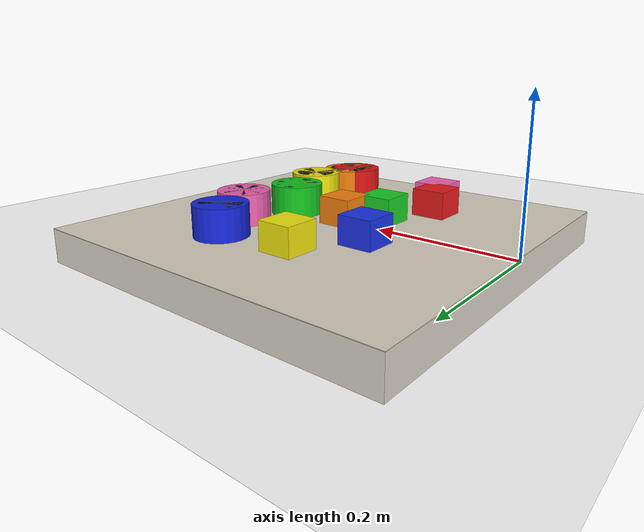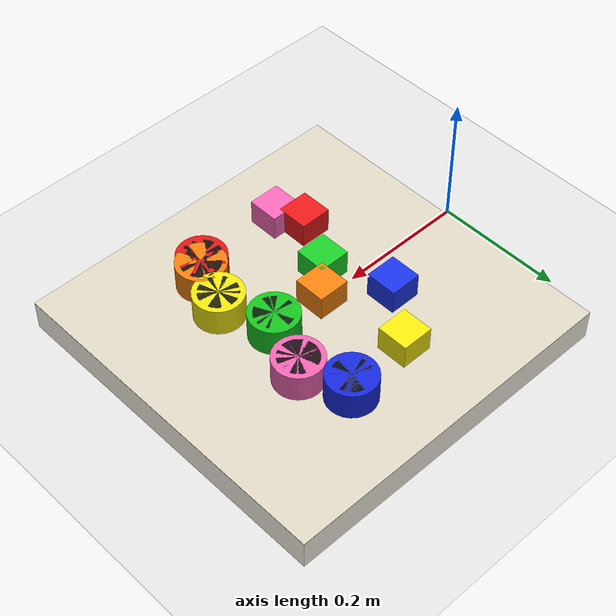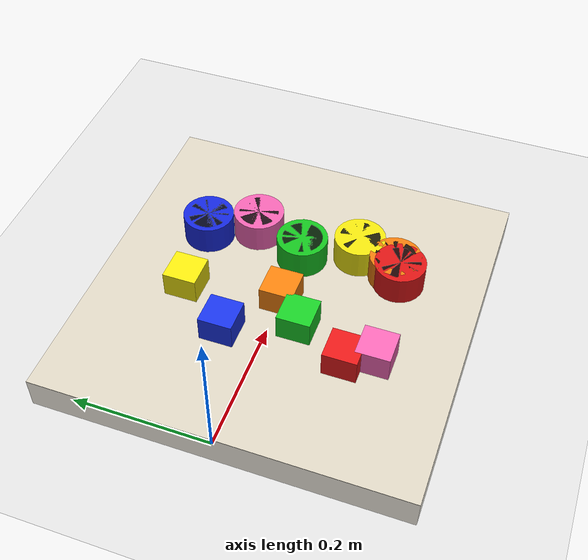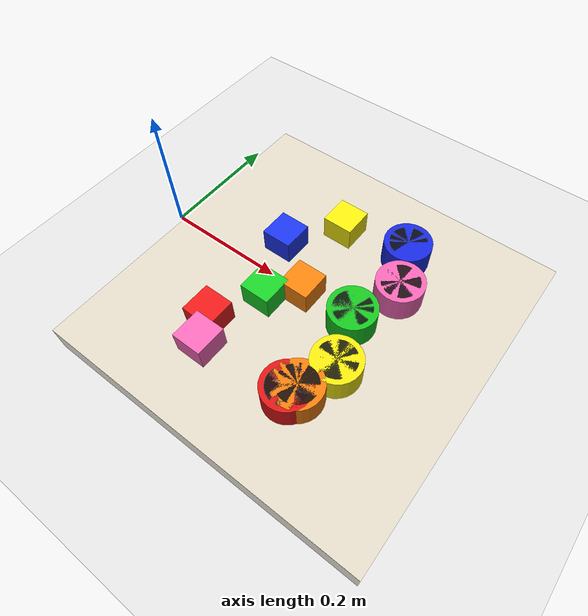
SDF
<?xml version="1.0" ?>
<sdf version="1.6">
<world name="default">
  <include><uri>model://sun</uri></include>
  <include><uri>model://ground_plane</uri></include>

  <!-- 工作台 -->
  <model name="workspace_table">
    <static>true</static>
    <pose>0.28 0.0 -0.025 0 0 0</pose>
    <link name="link">
      <visual name="v"><geometry><box><size>0.55 0.55 0.05</size></box></geometry>
        <material><ambient>0.85 0.82 0.75 1</ambient><diffuse>0.85 0.82 0.75 1</diffuse></material>
      </visual>
      <collision name="c"><geometry><box><size>0.55 0.55 0.05</size></box></geometry></collision>
    </link>
  </model>

  <!-- ══════════════ 方块 (5cm × 5cm × 4cm) ══════════════ -->

  <model name="red_block">
    <pose>0.18 -0.12 0.02 0 0 0</pose>
    <link name="link">
      <inertial><mass>0.05</mass></inertial>
      <visual name="v"><geometry><box><size>0.05 0.05 0.04</size></box></geometry>
        <material><ambient>0.9 0.1 0.1 1</ambient><diffuse>0.9 0.1 0.1 1</diffuse></material>
      </visual>
      <collision name="c"><geometry><box><size>0.05 0.05 0.04</size></box></geometry>
        <surface><friction><ode><mu>0.8</mu><mu2>0.8</mu2></ode></friction></surface>
      </collision>
    </link>
  </model>

  <model name="green_block">
    <pose>0.22 -0.04 0.02 0 0 0</pose>
    <link name="link">
      <inertial><mass>0.05</mass></inertial>
      <visual name="v"><geometry><box><size>0.05 0.05 0.04</size></box></geometry>
        <material><ambient>0.1 0.8 0.15 1</ambient><diffuse>0.1 0.8 0.15 1</diffuse></material>
      </visual>
      <collision name="c"><geometry><box><size>0.05 0.05 0.04</size></box></geometry>
        <surface><friction><ode><mu>0.8</mu><mu2>0.8</mu2></ode></friction></surface>
      </collision>
    </link>
  </model>

  <model name="blue_block">
    <pose>0.18 0.06 0.02 0 0 0</pose>
    <link name="link">
      <inertial><mass>0.05</mass></inertial>
      <visual name="v"><geometry><box><size>0.05 0.05 0.04</size></box></geometry>
        <material><ambient>0.1 0.2 0.9 1</ambient><diffuse>0.1 0.2 0.9 1</diffuse></material>
      </visual>
      <collision name="c"><geometry><box><size>0.05 0.05 0.04</size></box></geometry>
        <surface><friction><ode><mu>0.8</mu><mu2>0.8</mu2></ode></friction></surface>
      </collision>
    </link>
  </model>

  <model name="yellow_block">
    <pose>0.24 0.14 0.02 0 0 0</pose>
    <link name="link">
      <inertial><mass>0.05</mass></inertial>
      <visual name="v"><geometry><box><size>0.05 0.05 0.04</size></box></geometry>
        <material><ambient>0.95 0.9 0.05 1</ambient><diffuse>0.95 0.9 0.05 1</diffuse></material>
      </visual>
      <collision name="c"><geometry><box><size>0.05 0.05 0.04</size></box></geometry>
        <surface><friction><ode><mu>0.8</mu><mu2>0.8</mu2></ode></friction></surface>
      </collision>
    </link>
  </model>

  <model name="pink_block">
    <pose>0.20 -0.16 0.02 0 0 0</pose>
    <link name="link">
      <inertial><mass>0.05</mass></inertial>
      <visual name="v"><geometry><box><size>0.05 0.05 0.04</size></box></geometry>
        <material><ambient>0.95 0.4 0.7 1</ambient><diffuse>0.95 0.4 0.7 1</diffuse></material>
      </visual>
      <collision name="c"><geometry><box><size>0.05 0.05 0.04</size></box></geometry>
        <surface><friction><ode><mu>0.8</mu><mu2>0.8</mu2></ode></friction></surface>
      </collision>
    </link>
  </model>

  <model name="orange_block">
    <pose>0.26 0.0 0.02 0 0 0</pose>
    <link name="link">
      <inertial><mass>0.05</mass></inertial>
      <visual name="v"><geometry><box><size>0.05 0.05 0.04</size></box></geometry>
        <material><ambient>0.95 0.5 0.05 1</ambient><diffuse>0.95 0.5 0.05 1</diffuse></material>
      </visual>
      <collision name="c"><geometry><box><size>0.05 0.05 0.04</size></box></geometry>
        <surface><friction><ode><mu>0.8</mu><mu2>0.8</mu2></ode></friction></surface>
      </collision>
    </link>
  </model>

  <!-- ══════════════ 垃圾桶 (圆柱体, r=3.8cm, h=9cm) ══════════════
       桶是STATIC：因为它们是目标，不需要被物理引擎移动。
       训练时通过set_model_state传送到随机位置（static物体也可以被传送）。
  ══════════════ -->

  <model name="red_bin">
    <static>true</static>
    <pose>0.35 -0.15 0.0 0 0 0</pose>
    <link name="bin_outer">
      <visual name="v"><geometry><cylinder><radius>0.038</radius><length>0.090</length></cylinder></geometry>
        <material><ambient>0.85 0.08 0.08 1</ambient><diffuse>0.85 0.08 0.08 1</diffuse><specular>0.3 0.3 0.3 1</specular></material>
      </visual>
      <collision name="c"><geometry><cylinder><radius>0.038</radius><length>0.090</length></cylinder></geometry></collision>
    </link>
    <link name="bin_inner"><pose>0 0 0.005 0 0 0</pose>
      <visual name="v"><geometry><cylinder><radius>0.030</radius><length>0.080</length></cylinder></geometry>
        <material><ambient>0.12 0.02 0.02 1</ambient><diffuse>0.12 0.02 0.02 1</diffuse></material>
      </visual>
    </link>
  </model>

  <model name="green_bin">
    <static>true</static>
    <pose>0.35 0.00 0.0 0 0 0</pose>
    <link name="bin_outer">
      <visual name="v"><geometry><cylinder><radius>0.038</radius><length>0.090</length></cylinder></geometry>
        <material><ambient>0.08 0.75 0.12 1</ambient><diffuse>0.08 0.75 0.12 1</diffuse><specular>0.3 0.3 0.3 1</specular></material>
      </visual>
      <collision name="c"><geometry><cylinder><radius>0.038</radius><length>0.090</length></cylinder></geometry></collision>
    </link>
    <link name="bin_inner"><pose>0 0 0.005 0 0 0</pose>
      <visual name="v"><geometry><cylinder><radius>0.030</radius><length>0.080</length></cylinder></geometry>
        <material><ambient>0.02 0.12 0.02 1</ambient><diffuse>0.02 0.12 0.02 1</diffuse></material>
      </visual>
    </link>
  </model>

  <model name="blue_bin">
    <static>true</static>
    <pose>0.35 0.15 0.0 0 0 0</pose>
    <link name="bin_outer">
      <visual name="v"><geometry><cylinder><radius>0.038</radius><length>0.090</length></cylinder></geometry>
        <material><ambient>0.08 0.15 0.85 1</ambient><diffuse>0.08 0.15 0.85 1</diffuse><specular>0.3 0.3 0.3 1</specular></material>
      </visual>
      <collision name="c"><geometry><cylinder><radius>0.038</radius><length>0.090</length></cylinder></geometry></collision>
    </link>
    <link name="bin_inner"><pose>0 0 0.005 0 0 0</pose>
      <visual name="v"><geometry><cylinder><radius>0.030</radius><length>0.080</length></cylinder></geometry>
        <material><ambient>0.02 0.03 0.12 1</ambient><diffuse>0.02 0.03 0.12 1</diffuse></material>
      </visual>
    </link>
  </model>

  <model name="yellow_bin">
    <static>true</static>
    <pose>0.38 -0.08 0.0 0 0 0</pose>
    <link name="bin_outer">
      <visual name="v"><geometry><cylinder><radius>0.038</radius><length>0.090</length></cylinder></geometry>
        <material><ambient>0.92 0.88 0.05 1</ambient><diffuse>0.92 0.88 0.05 1</diffuse><specular>0.3 0.3 0.3 1</specular></material>
      </visual>
      <collision name="c"><geometry><cylinder><radius>0.038</radius><length>0.090</length></cylinder></geometry></collision>
    </link>
    <link name="bin_inner"><pose>0 0 0.005 0 0 0</pose>
      <visual name="v"><geometry><cylinder><radius>0.030</radius><length>0.080</length></cylinder></geometry>
        <material><ambient>0.12 0.12 0.02 1</ambient><diffuse>0.12 0.12 0.02 1</diffuse></material>
      </visual>
    </link>
  </model>

  <model name="pink_bin">
    <static>true</static>
    <pose>0.38 0.08 0.0 0 0 0</pose>
    <link name="bin_outer">
      <visual name="v"><geometry><cylinder><radius>0.038</radius><length>0.090</length></cylinder></geometry>
        <material><ambient>0.92 0.38 0.68 1</ambient><diffuse>0.92 0.38 0.68 1</diffuse><specular>0.3 0.3 0.3 1</specular></material>
      </visual>
      <collision name="c"><geometry><cylinder><radius>0.038</radius><length>0.090</length></cylinder></geometry></collision>
    </link>
    <link name="bin_inner"><pose>0 0 0.005 0 0 0</pose>
      <visual name="v"><geometry><cylinder><radius>0.030</radius><length>0.080</length></cylinder></geometry>
        <material><ambient>0.12 0.05 0.08 1</ambient><diffuse>0.12 0.05 0.08 1</diffuse></material>
      </visual>
    </link>
  </model>

  <model name="orange_bin">
    <static>true</static>
    <pose>0.36 -0.14 0.0 0 0 0</pose>
    <link name="bin_outer">
      <visual name="v"><geometry><cylinder><radius>0.038</radius><length>0.090</length></cylinder></geometry>
        <material><ambient>0.92 0.48 0.05 1</ambient><diffuse>0.92 0.48 0.05 1</diffuse><specular>0.3 0.3 0.3 1</specular></material>
      </visual>
      <collision name="c"><geometry><cylinder><radius>0.038</radius><length>0.090</length></cylinder></geometry></collision>
    </link>
    <link name="bin_inner"><pose>0 0 0.005 0 0 0</pose>
      <visual name="v"><geometry><cylinder><radius>0.030</radius><length>0.080</length></cylinder></geometry>
        <material><ambient>0.12 0.06 0.02 1</ambient><diffuse>0.12 0.06 0.02 1</diffuse></material>
      </visual>
    </link>
  </model>

</world>
</sdf>
